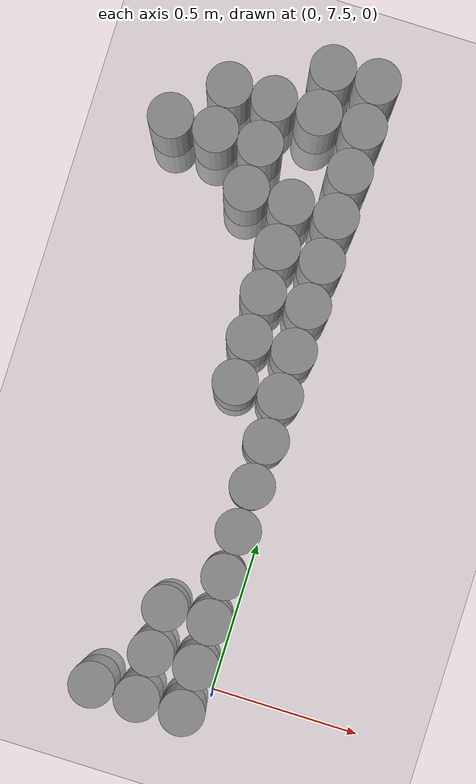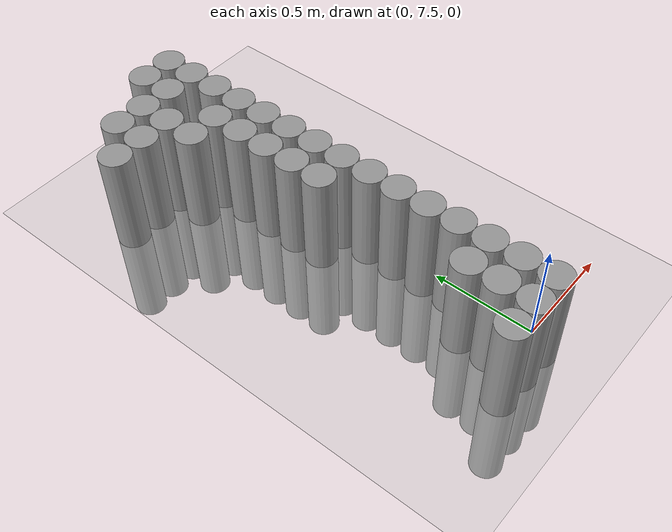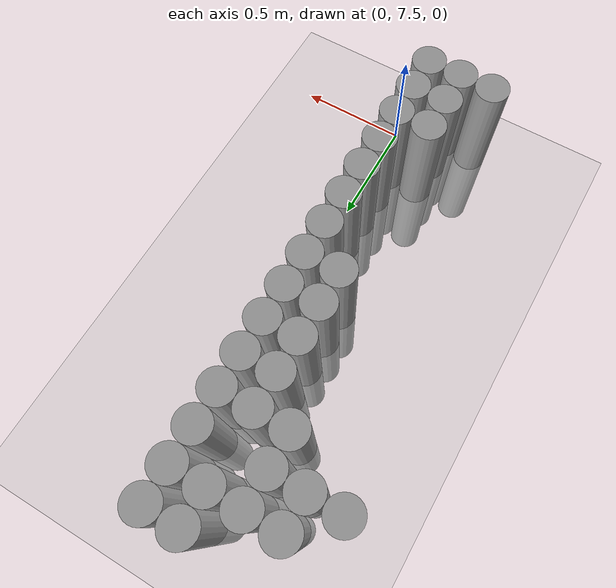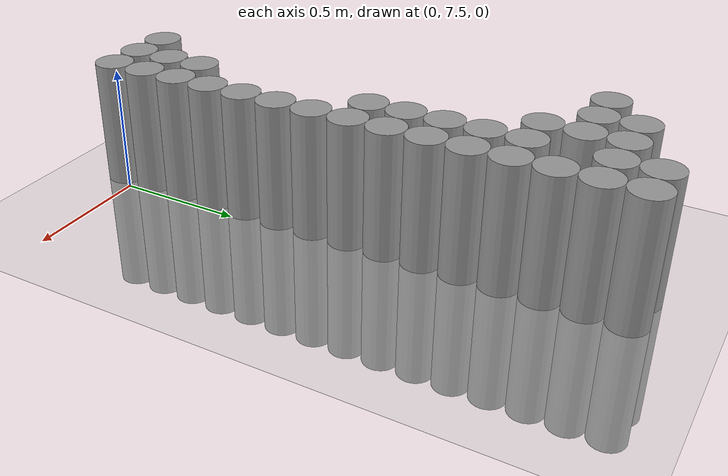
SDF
<sdf version="1.6">
 <world name="default">
  <model name="ground_plane">
   <static>1</static>
   <static>1</static>
   <link name="link">
    <collision name="collision">
     <geometry><plane><normal>0 0 1</normal><size>100 100</size></plane></geometry>
     <surface><friction><ode><mu>100</mu><mu2>50</mu2></ode></friction></surface>
    </collision>
    <visual name="visual">
     <cast_shadows>0</cast_shadows>
     <geometry><plane><normal>0 0 1</normal><size>100 100</size></plane></geometry>
     <material>
      <script><uri>file://media/materials/scripts/gazebo.material</uri><name>Gazebo/Grey</name></script>
     </material>
    </visual>
   </link>
  </model>
  <model name="unit_cylinder_188">
   <static>1</static>
   <pose>-0.675000 9.225000 0.000000 0.000000 0.000000 0.000000</pose>
   <link name="link">
    <inertial>
     <mass>1</mass>
     <inertia><ixx>0.145833</ixx><ixy>0</ixy><ixz>0</ixz><iyy>0.145833</iyy><iyz>0</iyz><izz>0.125</izz></inertia>
    </inertial>
    <collision name="collision">
     <geometry><cylinder><radius>0.075000</radius><length>1</length></cylinder></geometry>
    </collision>
    <visual name="visual">
     <geometry><cylinder><radius>0.075000</radius><length>1</length></cylinder></geometry>
     <material>
      <script><name>Gazebo/Grey</name><uri>file://media/materials/scripts/gazebo.material</uri></script>
     </material>
    </visual>
   </link>
  </model>
  <model name="unit_cylinder_193">
   <static>1</static>
   <pose>-0.525000 9.225000 0.000000 0.000000 0.000000 0.000000</pose>
   <link name="link">
    <inertial>
     <mass>1</mass>
     <inertia><ixx>0.145833</ixx><ixy>0</ixy><ixz>0</ixz><iyy>0.145833</iyy><iyz>0</iyz><izz>0.125</izz></inertia>
    </inertial>
    <collision name="collision">
     <geometry><cylinder><radius>0.075000</radius><length>1</length></cylinder></geometry>
    </collision>
    <visual name="visual">
     <geometry><cylinder><radius>0.075000</radius><length>1</length></cylinder></geometry>
     <material>
      <script><name>Gazebo/Grey</name><uri>file://media/materials/scripts/gazebo.material</uri></script>
     </material>
    </visual>
   </link>
  </model>
  <model name="unit_cylinder_194">
   <static>1</static>
   <pose>-0.525000 9.375000 0.000000 0.000000 0.000000 0.000000</pose>
   <link name="link">
    <inertial>
     <mass>1</mass>
     <inertia><ixx>0.145833</ixx><ixy>0</ixy><ixz>0</ixz><iyy>0.145833</iyy><iyz>0</iyz><izz>0.125</izz></inertia>
    </inertial>
    <collision name="collision">
     <geometry><cylinder><radius>0.075000</radius><length>1</length></cylinder></geometry>
    </collision>
    <visual name="visual">
     <geometry><cylinder><radius>0.075000</radius><length>1</length></cylinder></geometry>
     <material>
      <script><name>Gazebo/Grey</name><uri>file://media/materials/scripts/gazebo.material</uri></script>
     </material>
    </visual>
   </link>
  </model>
  <model name="unit_cylinder_198">
   <static>1</static>
   <pose>-0.375000 7.425000 0.000000 0.000000 0.000000 0.000000</pose>
   <link name="link">
    <inertial>
     <mass>1</mass>
     <inertia><ixx>0.145833</ixx><ixy>0</ixy><ixz>0</ixz><iyy>0.145833</iyy><iyz>0</iyz><izz>0.125</izz></inertia>
    </inertial>
    <collision name="collision">
     <geometry><cylinder><radius>0.075000</radius><length>1</length></cylinder></geometry>
    </collision>
    <visual name="visual">
     <geometry><cylinder><radius>0.075000</radius><length>1</length></cylinder></geometry>
     <material>
      <script><name>Gazebo/Grey</name><uri>file://media/materials/scripts/gazebo.material</uri></script>
     </material>
    </visual>
   </link>
  </model>
  <model name="unit_cylinder_199">
   <static>1</static>
   <pose>-0.375000 9.075000 0.000000 0.000000 0.000000 0.000000</pose>
   <link name="link">
    <inertial>
     <mass>1</mass>
     <inertia><ixx>0.145833</ixx><ixy>0</ixy><ixz>0</ixz><iyy>0.145833</iyy><iyz>0</iyz><izz>0.125</izz></inertia>
    </inertial>
    <collision name="collision">
     <geometry><cylinder><radius>0.075000</radius><length>1</length></cylinder></geometry>
    </collision>
    <visual name="visual">
     <geometry><cylinder><radius>0.075000</radius><length>1</length></cylinder></geometry>
     <material>
      <script><name>Gazebo/Grey</name><uri>file://media/materials/scripts/gazebo.material</uri></script>
     </material>
    </visual>
   </link>
  </model>
  <model name="unit_cylinder_200">
   <static>1</static>
   <pose>-0.375000 9.225000 0.000000 0.000000 0.000000 0.000000</pose>
   <link name="link">
    <inertial>
     <mass>1</mass>
     <inertia><ixx>0.145833</ixx><ixy>0</ixy><ixz>0</ixz><iyy>0.145833</iyy><iyz>0</iyz><izz>0.125</izz></inertia>
    </inertial>
    <collision name="collision">
     <geometry><cylinder><radius>0.075000</radius><length>1</length></cylinder></geometry>
    </collision>
    <visual name="visual">
     <geometry><cylinder><radius>0.075000</radius><length>1</length></cylinder></geometry>
     <material>
      <script><name>Gazebo/Grey</name><uri>file://media/materials/scripts/gazebo.material</uri></script>
     </material>
    </visual>
   </link>
  </model>
  <model name="unit_cylinder_201">
   <static>1</static>
   <pose>-0.375000 9.375000 0.000000 0.000000 0.000000 0.000000</pose>
   <link name="link">
    <inertial>
     <mass>1</mass>
     <inertia><ixx>0.145833</ixx><ixy>0</ixy><ixz>0</ixz><iyy>0.145833</iyy><iyz>0</iyz><izz>0.125</izz></inertia>
    </inertial>
    <collision name="collision">
     <geometry><cylinder><radius>0.075000</radius><length>1</length></cylinder></geometry>
    </collision>
    <visual name="visual">
     <geometry><cylinder><radius>0.075000</radius><length>1</length></cylinder></geometry>
     <material>
      <script><name>Gazebo/Grey</name><uri>file://media/materials/scripts/gazebo.material</uri></script>
     </material>
    </visual>
   </link>
  </model>
  <model name="unit_cylinder_210">
   <static>1</static>
   <pose>-0.225000 7.425000 0.000000 0.000000 0.000000 0.000000</pose>
   <link name="link">
    <inertial>
     <mass>1</mass>
     <inertia><ixx>0.145833</ixx><ixy>0</ixy><ixz>0</ixz><iyy>0.145833</iyy><iyz>0</iyz><izz>0.125</izz></inertia>
    </inertial>
    <collision name="collision">
     <geometry><cylinder><radius>0.075000</radius><length>1</length></cylinder></geometry>
    </collision>
    <visual name="visual">
     <geometry><cylinder><radius>0.075000</radius><length>1</length></cylinder></geometry>
     <material>
      <script><name>Gazebo/Grey</name><uri>file://media/materials/scripts/gazebo.material</uri></script>
     </material>
    </visual>
   </link>
  </model>
  <model name="unit_cylinder_211">
   <static>1</static>
   <pose>-0.225000 7.575000 0.000000 0.000000 0.000000 0.000000</pose>
   <link name="link">
    <inertial>
     <mass>1</mass>
     <inertia><ixx>0.145833</ixx><ixy>0</ixy><ixz>0</ixz><iyy>0.145833</iyy><iyz>0</iyz><izz>0.125</izz></inertia>
    </inertial>
    <collision name="collision">
     <geometry><cylinder><radius>0.075000</radius><length>1</length></cylinder></geometry>
    </collision>
    <visual name="visual">
     <geometry><cylinder><radius>0.075000</radius><length>1</length></cylinder></geometry>
     <material>
      <script><name>Gazebo/Grey</name><uri>file://media/materials/scripts/gazebo.material</uri></script>
     </material>
    </visual>
   </link>
  </model>
  <model name="unit_cylinder_212">
   <static>1</static>
   <pose>-0.225000 7.725000 0.000000 0.000000 0.000000 0.000000</pose>
   <link name="link">
    <inertial>
     <mass>1</mass>
     <inertia><ixx>0.145833</ixx><ixy>0</ixy><ixz>0</ixz><iyy>0.145833</iyy><iyz>0</iyz><izz>0.125</izz></inertia>
    </inertial>
    <collision name="collision">
     <geometry><cylinder><radius>0.075000</radius><length>1</length></cylinder></geometry>
    </collision>
    <visual name="visual">
     <geometry><cylinder><radius>0.075000</radius><length>1</length></cylinder></geometry>
     <material>
      <script><name>Gazebo/Grey</name><uri>file://media/materials/scripts/gazebo.material</uri></script>
     </material>
    </visual>
   </link>
  </model>
  <model name="unit_cylinder_213">
   <static>1</static>
   <pose>-0.225000 8.475000 0.000000 0.000000 0.000000 0.000000</pose>
   <link name="link">
    <inertial>
     <mass>1</mass>
     <inertia><ixx>0.145833</ixx><ixy>0</ixy><ixz>0</ixz><iyy>0.145833</iyy><iyz>0</iyz><izz>0.125</izz></inertia>
    </inertial>
    <collision name="collision">
     <geometry><cylinder><radius>0.075000</radius><length>1</length></cylinder></geometry>
    </collision>
    <visual name="visual">
     <geometry><cylinder><radius>0.075000</radius><length>1</length></cylinder></geometry>
     <material>
      <script><name>Gazebo/Grey</name><uri>file://media/materials/scripts/gazebo.material</uri></script>
     </material>
    </visual>
   </link>
  </model>
  <model name="unit_cylinder_214">
   <static>1</static>
   <pose>-0.225000 8.625000 0.000000 0.000000 0.000000 0.000000</pose>
   <link name="link">
    <inertial>
     <mass>1</mass>
     <inertia><ixx>0.145833</ixx><ixy>0</ixy><ixz>0</ixz><iyy>0.145833</iyy><iyz>0</iyz><izz>0.125</izz></inertia>
    </inertial>
    <collision name="collision">
     <geometry><cylinder><radius>0.075000</radius><length>1</length></cylinder></geometry>
    </collision>
    <visual name="visual">
     <geometry><cylinder><radius>0.075000</radius><length>1</length></cylinder></geometry>
     <material>
      <script><name>Gazebo/Grey</name><uri>file://media/materials/scripts/gazebo.material</uri></script>
     </material>
    </visual>
   </link>
  </model>
  <model name="unit_cylinder_215">
   <static>1</static>
   <pose>-0.225000 8.775000 0.000000 0.000000 0.000000 0.000000</pose>
   <link name="link">
    <inertial>
     <mass>1</mass>
     <inertia><ixx>0.145833</ixx><ixy>0</ixy><ixz>0</ixz><iyy>0.145833</iyy><iyz>0</iyz><izz>0.125</izz></inertia>
    </inertial>
    <collision name="collision">
     <geometry><cylinder><radius>0.075000</radius><length>1</length></cylinder></geometry>
    </collision>
    <visual name="visual">
     <geometry><cylinder><radius>0.075000</radius><length>1</length></cylinder></geometry>
     <material>
      <script><name>Gazebo/Grey</name><uri>file://media/materials/scripts/gazebo.material</uri></script>
     </material>
    </visual>
   </link>
  </model>
  <model name="unit_cylinder_216">
   <static>1</static>
   <pose>-0.225000 8.925000 0.000000 0.000000 0.000000 0.000000</pose>
   <link name="link">
    <inertial>
     <mass>1</mass>
     <inertia><ixx>0.145833</ixx><ixy>0</ixy><ixz>0</ixz><iyy>0.145833</iyy><iyz>0</iyz><izz>0.125</izz></inertia>
    </inertial>
    <collision name="collision">
     <geometry><cylinder><radius>0.075000</radius><length>1</length></cylinder></geometry>
    </collision>
    <visual name="visual">
     <geometry><cylinder><radius>0.075000</radius><length>1</length></cylinder></geometry>
     <material>
      <script><name>Gazebo/Grey</name><uri>file://media/materials/scripts/gazebo.material</uri></script>
     </material>
    </visual>
   </link>
  </model>
  <model name="unit_cylinder_217">
   <static>1</static>
   <pose>-0.225000 9.075000 0.000000 0.000000 0.000000 0.000000</pose>
   <link name="link">
    <inertial>
     <mass>1</mass>
     <inertia><ixx>0.145833</ixx><ixy>0</ixy><ixz>0</ixz><iyy>0.145833</iyy><iyz>0</iyz><izz>0.125</izz></inertia>
    </inertial>
    <collision name="collision">
     <geometry><cylinder><radius>0.075000</radius><length>1</length></cylinder></geometry>
    </collision>
    <visual name="visual">
     <geometry><cylinder><radius>0.075000</radius><length>1</length></cylinder></geometry>
     <material>
      <script><name>Gazebo/Grey</name><uri>file://media/materials/scripts/gazebo.material</uri></script>
     </material>
    </visual>
   </link>
  </model>
  <model name="unit_cylinder_218">
   <static>1</static>
   <pose>-0.225000 9.375000 0.000000 0.000000 0.000000 0.000000</pose>
   <link name="link">
    <inertial>
     <mass>1</mass>
     <inertia><ixx>0.145833</ixx><ixy>0</ixy><ixz>0</ixz><iyy>0.145833</iyy><iyz>0</iyz><izz>0.125</izz></inertia>
    </inertial>
    <collision name="collision">
     <geometry><cylinder><radius>0.075000</radius><length>1</length></cylinder></geometry>
    </collision>
    <visual name="visual">
     <geometry><cylinder><radius>0.075000</radius><length>1</length></cylinder></geometry>
     <material>
      <script><name>Gazebo/Grey</name><uri>file://media/materials/scripts/gazebo.material</uri></script>
     </material>
    </visual>
   </link>
  </model>
  <model name="unit_cylinder_219">
   <static>1</static>
   <pose>-0.225000 9.525000 0.000000 0.000000 0.000000 0.000000</pose>
   <link name="link">
    <inertial>
     <mass>1</mass>
     <inertia><ixx>0.145833</ixx><ixy>0</ixy><ixz>0</ixz><iyy>0.145833</iyy><iyz>0</iyz><izz>0.125</izz></inertia>
    </inertial>
    <collision name="collision">
     <geometry><cylinder><radius>0.075000</radius><length>1</length></cylinder></geometry>
    </collision>
    <visual name="visual">
     <geometry><cylinder><radius>0.075000</radius><length>1</length></cylinder></geometry>
     <material>
      <script><name>Gazebo/Grey</name><uri>file://media/materials/scripts/gazebo.material</uri></script>
     </material>
    </visual>
   </link>
  </model>
  <model name="unit_cylinder_235">
   <static>1</static>
   <pose>-0.075000 7.425000 0.000000 0.000000 0.000000 0.000000</pose>
   <link name="link">
    <inertial>
     <mass>1</mass>
     <inertia><ixx>0.145833</ixx><ixy>0</ixy><ixz>0</ixz><iyy>0.145833</iyy><iyz>0</iyz><izz>0.125</izz></inertia>
    </inertial>
    <collision name="collision">
     <geometry><cylinder><radius>0.075000</radius><length>1</length></cylinder></geometry>
    </collision>
    <visual name="visual">
     <geometry><cylinder><radius>0.075000</radius><length>1</length></cylinder></geometry>
     <material>
      <script><name>Gazebo/Grey</name><uri>file://media/materials/scripts/gazebo.material</uri></script>
     </material>
    </visual>
   </link>
  </model>
  <model name="unit_cylinder_236">
   <static>1</static>
   <pose>-0.075000 7.575000 0.000000 0.000000 0.000000 0.000000</pose>
   <link name="link">
    <inertial>
     <mass>1</mass>
     <inertia><ixx>0.145833</ixx><ixy>0</ixy><ixz>0</ixz><iyy>0.145833</iyy><iyz>0</iyz><izz>0.125</izz></inertia>
    </inertial>
    <collision name="collision">
     <geometry><cylinder><radius>0.075000</radius><length>1</length></cylinder></geometry>
    </collision>
    <visual name="visual">
     <geometry><cylinder><radius>0.075000</radius><length>1</length></cylinder></geometry>
     <material>
      <script><name>Gazebo/Grey</name><uri>file://media/materials/scripts/gazebo.material</uri></script>
     </material>
    </visual>
   </link>
  </model>
  <model name="unit_cylinder_237">
   <static>1</static>
   <pose>-0.075000 7.725000 0.000000 0.000000 0.000000 0.000000</pose>
   <link name="link">
    <inertial>
     <mass>1</mass>
     <inertia><ixx>0.145833</ixx><ixy>0</ixy><ixz>0</ixz><iyy>0.145833</iyy><iyz>0</iyz><izz>0.125</izz></inertia>
    </inertial>
    <collision name="collision">
     <geometry><cylinder><radius>0.075000</radius><length>1</length></cylinder></geometry>
    </collision>
    <visual name="visual">
     <geometry><cylinder><radius>0.075000</radius><length>1</length></cylinder></geometry>
     <material>
      <script><name>Gazebo/Grey</name><uri>file://media/materials/scripts/gazebo.material</uri></script>
     </material>
    </visual>
   </link>
  </model>
  <model name="unit_cylinder_238">
   <static>1</static>
   <pose>-0.075000 7.875000 0.000000 0.000000 0.000000 0.000000</pose>
   <link name="link">
    <inertial>
     <mass>1</mass>
     <inertia><ixx>0.145833</ixx><ixy>0</ixy><ixz>0</ixz><iyy>0.145833</iyy><iyz>0</iyz><izz>0.125</izz></inertia>
    </inertial>
    <collision name="collision">
     <geometry><cylinder><radius>0.075000</radius><length>1</length></cylinder></geometry>
    </collision>
    <visual name="visual">
     <geometry><cylinder><radius>0.075000</radius><length>1</length></cylinder></geometry>
     <material>
      <script><name>Gazebo/Grey</name><uri>file://media/materials/scripts/gazebo.material</uri></script>
     </material>
    </visual>
   </link>
  </model>
  <model name="unit_cylinder_239">
   <static>1</static>
   <pose>-0.075000 8.025000 0.000000 0.000000 0.000000 0.000000</pose>
   <link name="link">
    <inertial>
     <mass>1</mass>
     <inertia><ixx>0.145833</ixx><ixy>0</ixy><ixz>0</ixz><iyy>0.145833</iyy><iyz>0</iyz><izz>0.125</izz></inertia>
    </inertial>
    <collision name="collision">
     <geometry><cylinder><radius>0.075000</radius><length>1</length></cylinder></geometry>
    </collision>
    <visual name="visual">
     <geometry><cylinder><radius>0.075000</radius><length>1</length></cylinder></geometry>
     <material>
      <script><name>Gazebo/Grey</name><uri>file://media/materials/scripts/gazebo.material</uri></script>
     </material>
    </visual>
   </link>
  </model>
  <model name="unit_cylinder_240">
   <static>1</static>
   <pose>-0.075000 8.175000 0.000000 0.000000 0.000000 0.000000</pose>
   <link name="link">
    <inertial>
     <mass>1</mass>
     <inertia><ixx>0.145833</ixx><ixy>0</ixy><ixz>0</ixz><iyy>0.145833</iyy><iyz>0</iyz><izz>0.125</izz></inertia>
    </inertial>
    <collision name="collision">
     <geometry><cylinder><radius>0.075000</radius><length>1</length></cylinder></geometry>
    </collision>
    <visual name="visual">
     <geometry><cylinder><radius>0.075000</radius><length>1</length></cylinder></geometry>
     <material>
      <script><name>Gazebo/Grey</name><uri>file://media/materials/scripts/gazebo.material</uri></script>
     </material>
    </visual>
   </link>
  </model>
  <model name="unit_cylinder_241">
   <static>1</static>
   <pose>-0.075000 8.325000 0.000000 0.000000 0.000000 0.000000</pose>
   <link name="link">
    <inertial>
     <mass>1</mass>
     <inertia><ixx>0.145833</ixx><ixy>0</ixy><ixz>0</ixz><iyy>0.145833</iyy><iyz>0</iyz><izz>0.125</izz></inertia>
    </inertial>
    <collision name="collision">
     <geometry><cylinder><radius>0.075000</radius><length>1</length></cylinder></geometry>
    </collision>
    <visual name="visual">
     <geometry><cylinder><radius>0.075000</radius><length>1</length></cylinder></geometry>
     <material>
      <script><name>Gazebo/Grey</name><uri>file://media/materials/scripts/gazebo.material</uri></script>
     </material>
    </visual>
   </link>
  </model>
  <model name="unit_cylinder_242">
   <static>1</static>
   <pose>-0.075000 8.475000 0.000000 0.000000 0.000000 0.000000</pose>
   <link name="link">
    <inertial>
     <mass>1</mass>
     <inertia><ixx>0.145833</ixx><ixy>0</ixy><ixz>0</ixz><iyy>0.145833</iyy><iyz>0</iyz><izz>0.125</izz></inertia>
    </inertial>
    <collision name="collision">
     <geometry><cylinder><radius>0.075000</radius><length>1</length></cylinder></geometry>
    </collision>
    <visual name="visual">
     <geometry><cylinder><radius>0.075000</radius><length>1</length></cylinder></geometry>
     <material>
      <script><name>Gazebo/Grey</name><uri>file://media/materials/scripts/gazebo.material</uri></script>
     </material>
    </visual>
   </link>
  </model>
  <model name="unit_cylinder_243">
   <static>1</static>
   <pose>-0.075000 8.625000 0.000000 0.000000 0.000000 0.000000</pose>
   <link name="link">
    <inertial>
     <mass>1</mass>
     <inertia><ixx>0.145833</ixx><ixy>0</ixy><ixz>0</ixz><iyy>0.145833</iyy><iyz>0</iyz><izz>0.125</izz></inertia>
    </inertial>
    <collision name="collision">
     <geometry><cylinder><radius>0.075000</radius><length>1</length></cylinder></geometry>
    </collision>
    <visual name="visual">
     <geometry><cylinder><radius>0.075000</radius><length>1</length></cylinder></geometry>
     <material>
      <script><name>Gazebo/Grey</name><uri>file://media/materials/scripts/gazebo.material</uri></script>
     </material>
    </visual>
   </link>
  </model>
  <model name="unit_cylinder_244">
   <static>1</static>
   <pose>-0.075000 8.775000 0.000000 0.000000 0.000000 0.000000</pose>
   <link name="link">
    <inertial>
     <mass>1</mass>
     <inertia><ixx>0.145833</ixx><ixy>0</ixy><ixz>0</ixz><iyy>0.145833</iyy><iyz>0</iyz><izz>0.125</izz></inertia>
    </inertial>
    <collision name="collision">
     <geometry><cylinder><radius>0.075000</radius><length>1</length></cylinder></geometry>
    </collision>
    <visual name="visual">
     <geometry><cylinder><radius>0.075000</radius><length>1</length></cylinder></geometry>
     <material>
      <script><name>Gazebo/Grey</name><uri>file://media/materials/scripts/gazebo.material</uri></script>
     </material>
    </visual>
   </link>
  </model>
  <model name="unit_cylinder_245">
   <static>1</static>
   <pose>-0.075000 8.925000 0.000000 0.000000 0.000000 0.000000</pose>
   <link name="link">
    <inertial>
     <mass>1</mass>
     <inertia><ixx>0.145833</ixx><ixy>0</ixy><ixz>0</ixz><iyy>0.145833</iyy><iyz>0</iyz><izz>0.125</izz></inertia>
    </inertial>
    <collision name="collision">
     <geometry><cylinder><radius>0.075000</radius><length>1</length></cylinder></geometry>
    </collision>
    <visual name="visual">
     <geometry><cylinder><radius>0.075000</radius><length>1</length></cylinder></geometry>
     <material>
      <script><name>Gazebo/Grey</name><uri>file://media/materials/scripts/gazebo.material</uri></script>
     </material>
    </visual>
   </link>
  </model>
  <model name="unit_cylinder_246">
   <static>1</static>
   <pose>-0.075000 9.075000 0.000000 0.000000 0.000000 0.000000</pose>
   <link name="link">
    <inertial>
     <mass>1</mass>
     <inertia><ixx>0.145833</ixx><ixy>0</ixy><ixz>0</ixz><iyy>0.145833</iyy><iyz>0</iyz><izz>0.125</izz></inertia>
    </inertial>
    <collision name="collision">
     <geometry><cylinder><radius>0.075000</radius><length>1</length></cylinder></geometry>
    </collision>
    <visual name="visual">
     <geometry><cylinder><radius>0.075000</radius><length>1</length></cylinder></geometry>
     <material>
      <script><name>Gazebo/Grey</name><uri>file://media/materials/scripts/gazebo.material</uri></script>
     </material>
    </visual>
   </link>
  </model>
  <model name="unit_cylinder_247">
   <static>1</static>
   <pose>-0.075000 9.225000 0.000000 0.000000 0.000000 0.000000</pose>
   <link name="link">
    <inertial>
     <mass>1</mass>
     <inertia><ixx>0.145833</ixx><ixy>0</ixy><ixz>0</ixz><iyy>0.145833</iyy><iyz>0</iyz><izz>0.125</izz></inertia>
    </inertial>
    <collision name="collision">
     <geometry><cylinder><radius>0.075000</radius><length>1</length></cylinder></geometry>
    </collision>
    <visual name="visual">
     <geometry><cylinder><radius>0.075000</radius><length>1</length></cylinder></geometry>
     <material>
      <script><name>Gazebo/Grey</name><uri>file://media/materials/scripts/gazebo.material</uri></script>
     </material>
    </visual>
   </link>
  </model>
  <model name="unit_cylinder_248">
   <static>1</static>
   <pose>-0.075000 9.375000 0.000000 0.000000 0.000000 0.000000</pose>
   <link name="link">
    <inertial>
     <mass>1</mass>
     <inertia><ixx>0.145833</ixx><ixy>0</ixy><ixz>0</ixz><iyy>0.145833</iyy><iyz>0</iyz><izz>0.125</izz></inertia>
    </inertial>
    <collision name="collision">
     <geometry><cylinder><radius>0.075000</radius><length>1</length></cylinder></geometry>
    </collision>
    <visual name="visual">
     <geometry><cylinder><radius>0.075000</radius><length>1</length></cylinder></geometry>
     <material>
      <script><name>Gazebo/Grey</name><uri>file://media/materials/scripts/gazebo.material</uri></script>
     </material>
    </visual>
   </link>
  </model>
  <model name="unit_cylinder_249">
   <static>1</static>
   <pose>-0.075000 9.525000 0.000000 0.000000 0.000000 0.000000</pose>
   <link name="link">
    <inertial>
     <mass>1</mass>
     <inertia><ixx>0.145833</ixx><ixy>0</ixy><ixz>0</ixz><iyy>0.145833</iyy><iyz>0</iyz><izz>0.125</izz></inertia>
    </inertial>
    <collision name="collision">
     <geometry><cylinder><radius>0.075000</radius><length>1</length></cylinder></geometry>
    </collision>
    <visual name="visual">
     <geometry><cylinder><radius>0.075000</radius><length>1</length></cylinder></geometry>
     <material>
      <script><name>Gazebo/Grey</name><uri>file://media/materials/scripts/gazebo.material</uri></script>
     </material>
    </visual>
   </link>
  </model>
 </world>
</sdf>
